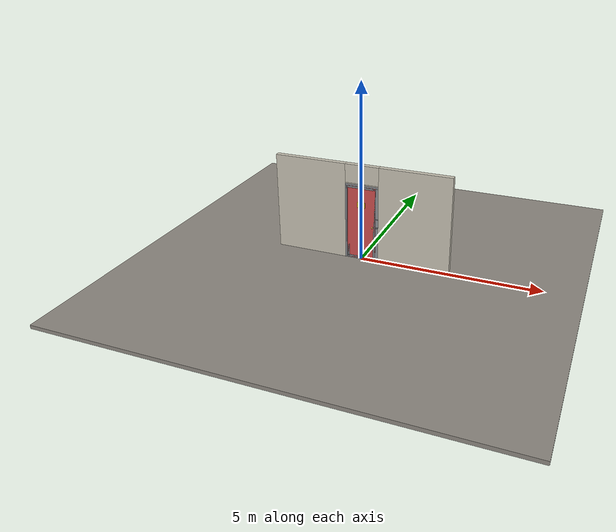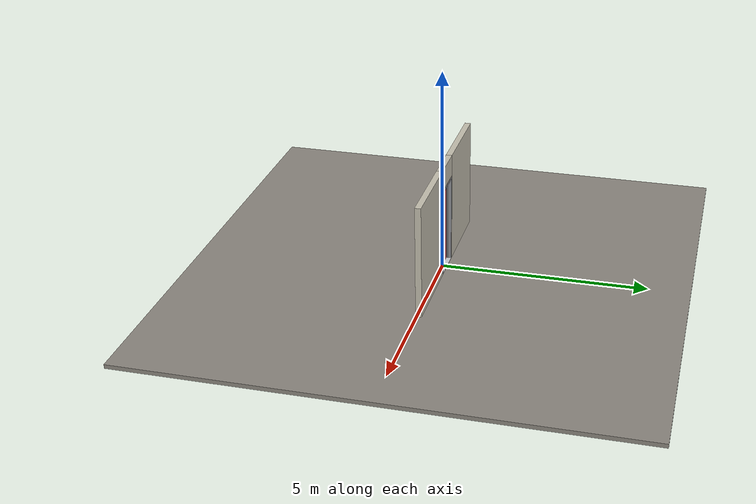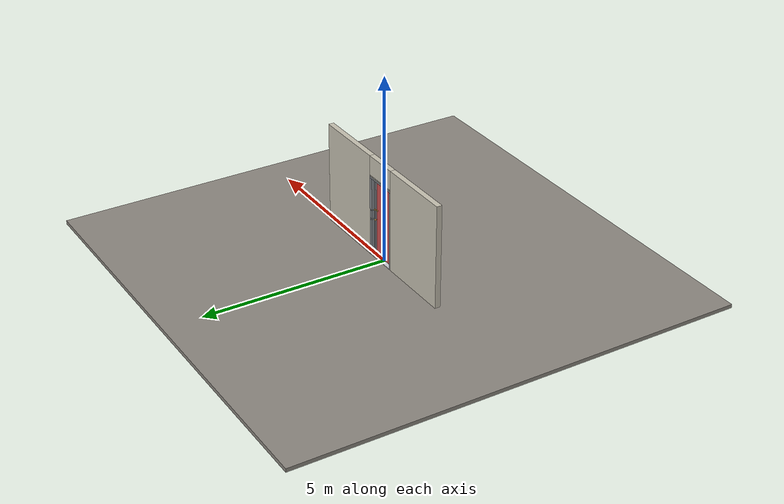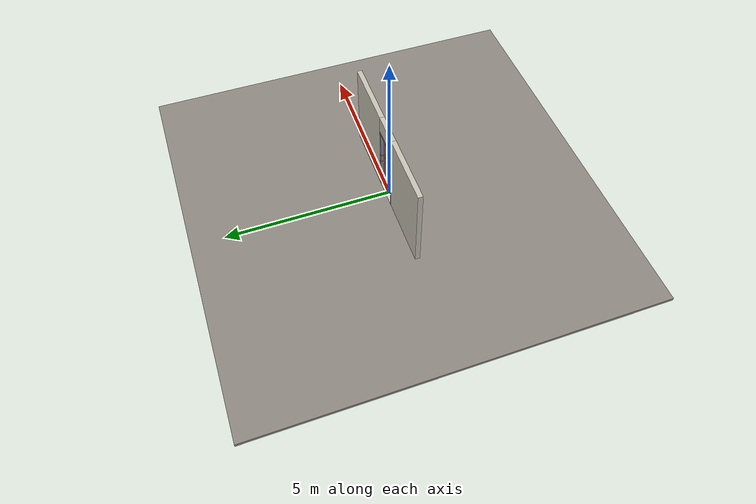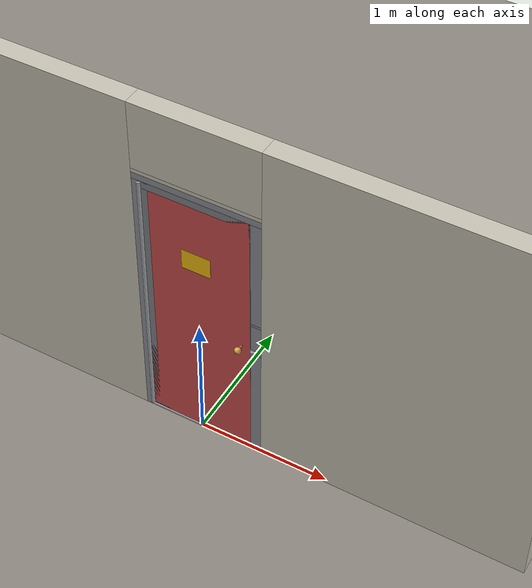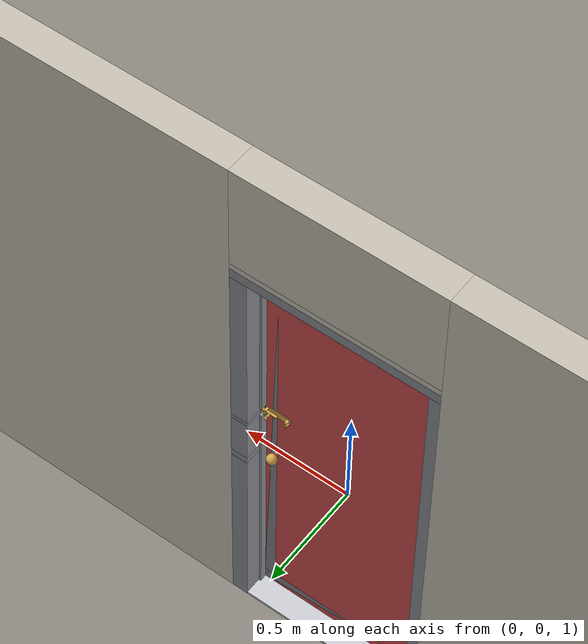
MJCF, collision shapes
<?xml version="1.0" ?>
<mujoco model="db0997_swing_single_full">
  <compiler angle="radian" meshdir="../../hardware" texturedir="../../textures" autolimits="true" inertiafromgeom="false"/>
  <option timestep="0.002" integrator="implicitfast" cone="elliptic" impratio="10" noslip_iterations="3">
    <flag multiccd="enable"/>
  </option>
  <size memory="16M"/>
  <default>
    <geom condim="4" solref="0.005 1" solimp="0.95 0.99 0.001"/>
    <joint solreflimit="0.005 1" solimplimit="0.95 0.99 0.001"/>
    <tendon solreflimit="0.005 1"/>
    <equality solref="0.002 1"/>
  </default>
  <visual>
    <headlight ambient="0.4 0.4 0.4" diffuse="0.7 0.7 0.7" specular="0.2 0.2 0.2"/>
    <quality shadowsize="4096"/>
    <map znear="0.01" zfar="60"/>
  </visual>
  <asset>
    <mesh name="knob_d1888f6f03" file="knob_d1888f6f03.obj"/>
    <material name="mat_floor" rgba="0.55 0.53 0.5 1" specular="0.2" shininess="0.15" reflectance="0"/>
    <material name="mat_wall" rgba="0.78 0.76 0.7 1" specular="0.2" shininess="0.1" reflectance="0"/>
    <material name="mat_leaf" rgba="0.5 0.51 0.53 1" specular="0.23" shininess="0.31" reflectance="0.02"/>
    <material name="mat_hinge" rgba="0.65 0.66 0.68 1" specular="0.74" shininess="0.5" reflectance="0.36"/>
    <material name="mat_op_brass" rgba="0.85 0.66 0.3 1" specular="0.8" shininess="0.75" reflectance="0.4"/>
    <material name="mat_trim" rgba="0.85 0.66 0.3 1" specular="0.8" shininess="0.75" reflectance="0.4"/>
    <material name="mat_bolt" rgba="0.85 0.66 0.3 1" specular="0.8" shininess="0.75" reflectance="0.4"/>
    <material name="mat_frame" rgba="0.55 0.56 0.58 1" specular="0.8" shininess="0.55" reflectance="0.4"/>
    <material name="mat_threshold" rgba="0.8 0.81 0.83 1" specular="0.8" shininess="0.6" reflectance="0.4"/>
    <material name="mat_placard" rgba="0.95 0.75 0.05 1" specular="0.2" shininess="0.5" reflectance="0"/>
    <texture name="skybox" type="skybox" builtin="gradient" rgb1="0.6 0.7 0.85" rgb2="0.9 0.92 0.95" width="256" height="256"/>
  </asset>
  <worldbody>
    <light name="sun" pos="1.5 -2.5 4" dir="-0.3 0.5 -0.8" directional="true" diffuse="0.8 0.8 0.8" specular="0.3 0.3 0.3" castshadow="true"/>
    <light name="fill" pos="-1.5 2.5 3" dir="0.3 -0.5 -0.7" directional="true" diffuse="0.35 0.35 0.4" castshadow="false"/>
    <camera name="robot_view" pos="0 -2.584812 1.812087" xyaxes="1 0 0 0 0.26963 0.962964" fovy="52"/>
    <camera name="far_view" pos="0 2.690812 1.812087" xyaxes="-1 0 0 0 -0.26963 0.962964" fovy="52"/>
    <camera name="iso" pos="2.004737 -2.162762 2.234138" xyaxes="0.741536 0.670913 0 -0.242917 0.268487 0.932151" fovy="46"/>
    <camera name="detail_handle" pos="0.516 -0.859 1.296" xyaxes="0.97561 0.219512 0 -0.070934 0.315262 0.94635" fovy="38"/>
    <geom name="floor" type="box" size="6 6 0.05" pos="0 0 -0.05" material="mat_floor" group="0" contype="1" conaffinity="1" friction="0.8 0.005 0.0001" density="2400"/>
    <geom name="wall_left" type="box" size="1.02 0.0725 1.3735" pos="-1.48 0.053 1.3735" material="mat_wall" group="0" contype="1" conaffinity="1" friction="0.6 0.005 0.0001" density="800"/>
    <geom name="wall_right" type="box" size="1.005 0.0725 1.3735" pos="1.495 0.053 1.3735" material="mat_wall" group="0" contype="1" conaffinity="1" friction="0.6 0.005 0.0001" density="800"/>
    <geom name="wall_header" type="box" size="0.475 0.0725 0.26" pos="0.015 0.053 2.487" material="mat_wall" group="0" contype="1" conaffinity="1" friction="0.6 0.005 0.0001" density="800"/>
    <geom name="leaf_aux_bolt_keeper_b" type="box" size="0.014 0.003 0.0005" pos="0.4095 0.0245 1.253" quat="-0.5 -0.5 0.5 0.5" material="mat_op_brass" group="1" contype="0" conaffinity="0" density="7800"/>
    <geom name="leaf_aux_bolt_keeper_l" type="box" size="0.003 0.01 0.0005" pos="0.4095 0.0355 1.266" quat="-0.5 -0.5 0.5 0.5" material="mat_op_brass" group="1" contype="0" conaffinity="0" density="7800"/>
    <geom name="leaf_aux_bolt_keeper_t" type="box" size="0.014 0.003 0.0005" pos="0.4095 0.0245 1.279" quat="-0.5 -0.5 0.5 0.5" material="mat_op_brass" group="1" contype="0" conaffinity="0" density="7800"/>
    <geom name="leaf_aux_bolt_keeper_r" type="box" size="0.003 0.01 0.0005" pos="0.4095 0.0135 1.266" quat="-0.5 -0.5 0.5 0.5" material="mat_op_brass" group="1" contype="0" conaffinity="0" density="7800"/>
    <geom name="jamb_hinge" type="box" size="0.025 0.0725 1.0735" pos="-0.435 0.053 1.0735" material="mat_frame" group="0" contype="1" conaffinity="1" friction="0.6 0.005 0.0001" density="300"/>
    <geom name="strike_1016_wall_n" type="box" size="0.04 0.058 0.0183" pos="0.45 0.0675 1.016" material="mat_frame" group="0" contype="1" conaffinity="1" friction="0.6 0.005 0.0001" density="300"/>
    <geom name="strike_1016_wall_p" type="box" size="0.04 0.008 0.0183" pos="0.45 -0.0175 1.016" material="mat_frame" group="0" contype="1" conaffinity="1" friction="0.6 0.005 0.0001" density="300"/>
    <geom name="strike_1016_ramp" type="box" size="0.04 0.018028 0.0183" pos="0.453282 -0.018312 1.016" quat="0.957092 0 0 0.289784" material="mat_frame" group="0" contype="1" conaffinity="1" friction="0.12 0.005 0.0001" density="300"/>
    <geom name="strike_1016_back" type="box" size="0.0285 0.0095 0.0183" pos="0.4615 0 1.016" material="mat_frame" group="0" contype="1" conaffinity="1" friction="0.6 0.005 0.0001" density="300"/>
    <geom name="strike_1266_wall_n" type="box" size="0.04 0.0465 0.01" pos="0.45 0.079 1.266" material="mat_frame" group="0" contype="1" conaffinity="1" friction="0.6 0.005 0.0001" density="300"/>
    <geom name="strike_1266_wall_p" type="box" size="0.04 0.018 0.01" pos="0.45 -0.0015 1.266" material="mat_frame" group="0" contype="1" conaffinity="1" friction="0.6 0.005 0.0001" density="300"/>
    <geom name="strike_1266_back" type="box" size="0.019 0.008 0.01" pos="0.471 0.0245 1.266" material="mat_frame" group="0" contype="1" conaffinity="1" friction="0.6 0.005 0.0001" density="300"/>
    <geom name="jamb_strike_0" type="box" size="0.04 0.0725 0.49885" pos="0.45 0.053 0.49885" material="mat_frame" group="0" contype="1" conaffinity="1" friction="0.6 0.005 0.0001" density="300"/>
    <geom name="jamb_strike_1" type="box" size="0.04 0.0725 0.11085" pos="0.45 0.053 1.14515" material="mat_frame" group="0" contype="1" conaffinity="1" friction="0.6 0.005 0.0001" density="300"/>
    <geom name="jamb_strike_2" type="box" size="0.04 0.0725 0.4355" pos="0.45 0.053 1.7115" material="mat_frame" group="0" contype="1" conaffinity="1" friction="0.6 0.005 0.0001" density="300"/>
    <geom name="jamb_head" type="box" size="0.475 0.0725 0.025" pos="0.015 0.053 2.172" material="mat_frame" group="0" contype="1" conaffinity="1" friction="0.6 0.005 0.0001" density="300"/>
    <geom name="head_stud" type="box" size="0.475 0.0725 0.015" pos="0.015 0.053 2.212" material="mat_wall" group="0" contype="1" conaffinity="1" friction="0.6 0.005 0.0001" density="500"/>
    <geom name="stop_hinge" type="box" size="0.0055 0.016 1.0735" pos="-0.4045 0.029 1.0735" material="mat_frame" group="0" contype="1" conaffinity="1" friction="0.6 0.005 0.0001" density="300"/>
    <geom name="stop_strike" type="box" size="0.0055 0.016 0.622" pos="0.4045 0.029 0.622" material="mat_frame" group="0" contype="1" conaffinity="1" friction="0.6 0.005 0.0001" density="300"/>
    <geom name="stop_strike_1" type="box" size="0.0055 0.016 0.4295" pos="0.4045 0.029 1.7175" material="mat_frame" group="0" contype="1" conaffinity="1" friction="0.6 0.005 0.0001" density="300"/>
    <geom name="stop_head" type="box" size="0.41 0.016 0.0055" pos="0 0.029 2.1415" material="mat_frame" group="0" contype="1" conaffinity="1" friction="0.6 0.005 0.0001" density="300"/>
    <geom name="threshold" type="box" size="0.46 0.0725 0.0065" pos="0 0.053 0.0065" material="mat_threshold" group="0" contype="1" conaffinity="1" friction="0.5 0.005 0.0001" density="2700"/>
    <site name="approach_point" pos="0 -1.5 0" quat="1 0 0 0" size="0.05" rgba="0.2 0.9 0.2 0.5" group="4"/>
    <site name="goal_point" pos="0 1.5 0" quat="1 0 0 0" size="0.05" rgba="0.2 0.9 0.2 0.5" group="4"/>
    <site name="door_plane_center" pos="0 0 1.0735" quat="1 0 0 0" size="0.02" rgba="0.2 0.9 0.2 0.5" group="4"/>
    <body name="leaf" pos="-0.41 0 0">
      <inertial pos="0.393045 -0.000798 1.080767" mass="77.544867" quat="0.498695 0.501477 -0.498519 0.501302" diaginertia="4.620354308 29.137377208 33.747471975"/>
      <joint name="leaf_hinge" type="hinge" axis="0 0 -1" pos="0.003 -0.0195 0" limited="true" range="0 2.268928" damping="0.218374" frictionloss="3.093382" armature="0.02"/>
      <geom name="leaf_slab_col" type="box" size="0.4065 0.0125 1.063" pos="0.4095 0 1.08" material="mat_leaf" group="3" contype="1" conaffinity="1" rgba="0.8 0.3 0.3 0.25" friction="0.45 0.005 0.0001" density="1"/>
      <geom name="leaf_rail_b" type="box" size="0.4065 0.0125 0.03" pos="0.4095 0 0.047" material="mat_leaf" group="1" contype="0" conaffinity="0" density="1"/>
      <geom name="leaf_rail_t" type="box" size="0.4065 0.0125 0.03" pos="0.4095 0 2.113" material="mat_leaf" group="1" contype="0" conaffinity="0" density="1"/>
      <geom name="leaf_stile_h" type="box" size="0.03 0.0125 1.063" pos="0.033 0 1.08" material="mat_leaf" group="1" contype="0" conaffinity="0" density="1"/>
      <geom name="leaf_stile_l" type="box" size="0.03 0.0125 1.063" pos="0.786 0 1.08" material="mat_leaf" group="1" contype="0" conaffinity="0" density="1"/>
      <geom name="leaf_bar_0" type="cylinder" size="0.0095 1.003" pos="0.1323 0 1.08" material="mat_leaf" group="1" contype="0" conaffinity="0" density="1"/>
      <geom name="leaf_bar_1" type="cylinder" size="0.0095 1.003" pos="0.2709 0 1.08" material="mat_leaf" group="1" contype="0" conaffinity="0" density="1"/>
      <geom name="leaf_bar_2" type="cylinder" size="0.0095 1.003" pos="0.4095 0 1.08" material="mat_leaf" group="1" contype="0" conaffinity="0" density="1"/>
      <geom name="leaf_bar_3" type="cylinder" size="0.0095 1.003" pos="0.5481 0 1.08" material="mat_leaf" group="1" contype="0" conaffinity="0" density="1"/>
      <geom name="leaf_bar_4" type="cylinder" size="0.0095 1.003" pos="0.6867 0 1.08" material="mat_leaf" group="1" contype="0" conaffinity="0" density="1"/>
      <geom name="leaf_crossbar_33" type="box" size="0.3465 0.01 0.02" pos="0.4095 0 0.71858" material="mat_leaf" group="1" contype="0" conaffinity="0" density="1"/>
      <geom name="leaf_crossbar_66" type="box" size="0.3465 0.01 0.02" pos="0.4095 0 1.42016" material="mat_leaf" group="1" contype="0" conaffinity="0" density="1"/>
      <geom name="hinge_continuous" type="cylinder" size="0.0136 1.053" pos="0.003 -0.0195 1.08" material="mat_hinge" group="1" contype="0" conaffinity="0" density="2700"/>
      <geom name="leaf_latch_bolt_faceplate" type="box" size="0.0006 0.0105 0.0283" pos="0.8154 0 1.016" material="mat_bolt" group="1" contype="0" conaffinity="0" density="8500"/>
      <geom name="leaf_aux_bolt_plate" type="box" size="0.0595 0.019 0.001" pos="0.7485 0.0135 1.266" quat="0.707107 -0.707107 0 0" material="mat_op_brass" group="1" contype="0" conaffinity="0" density="7800"/>
      <geom name="leaf_aux_bolt_guide_0_leg_n" type="box" size="0.006 0.002 0.0125" pos="0.8 0.025 1.277" quat="0.707107 -0.707107 0 0" material="mat_op_brass" group="1" contype="0" conaffinity="0" density="7800"/>
      <geom name="leaf_aux_bolt_guide_0_leg_p" type="box" size="0.006 0.002 0.0125" pos="0.8 0.025 1.255" quat="0.707107 -0.707107 0 0" material="mat_op_brass" group="1" contype="0" conaffinity="0" density="7800"/>
      <geom name="leaf_aux_bolt_guide_0_bridge" type="box" size="0.006 0.013 0.002" pos="0.8 0.0355 1.266" quat="0.707107 -0.707107 0 0" material="mat_op_brass" group="1" contype="0" conaffinity="0" density="7800"/>
      <geom name="leaf_aux_bolt_guide_1_leg_n" type="box" size="0.006 0.002 0.0125" pos="0.699 0.025 1.277" quat="0.707107 -0.707107 0 0" material="mat_op_brass" group="1" contype="0" conaffinity="0" density="7800"/>
      <geom name="leaf_aux_bolt_guide_1_leg_p" type="box" size="0.006 0.002 0.0125" pos="0.699 0.025 1.255" quat="0.707107 -0.707107 0 0" material="mat_op_brass" group="1" contype="0" conaffinity="0" density="7800"/>
      <geom name="leaf_aux_bolt_guide_1_bridge" type="box" size="0.006 0.013 0.002" pos="0.699 0.0355 1.266" quat="0.707107 -0.707107 0 0" material="mat_op_brass" group="1" contype="0" conaffinity="0" density="7800"/>
      <geom name="warning_placard" type="box" size="0.11 0.001 0.08" pos="0.4095 -0.0135 1.6115" material="mat_placard" group="2" contype="0" conaffinity="0" density="1000"/>
      <site name="leaf_edge_mid" pos="0.816 0 1.063" quat="1 0 0 0" size="0.02" rgba="0.2 0.9 0.2 0.5" group="4"/>
      <body name="leaf_handle" pos="0.746 0 1.016">
        <inertial pos="0 0 0" mass="1.135083" quat="0 0.707107 0.707107 0" diaginertia="0.00031221 0.003140271 0.003140271"/>
        <joint name="leaf_handle_hinge" type="hinge" axis="0 -1 0" limited="true" range="0 0.87" damping="0.143612" frictionloss="0.038" stiffness="0.5" springref="-0.5" armature="0.01"/>
        <geom name="leaf_handle_spindle" type="cylinder" size="0.006 0.0205" pos="0 0 0" quat="0.707107 -0.707107 0 0" material="mat_op_brass" group="1" contype="0" conaffinity="0" density="7850"/>
        <geom name="leaf_handle_knob_n" type="mesh" mesh="knob_d1888f6f03" pos="0 -0.0125 0" quat="0.707107 0.707107 0 0" material="mat_op_brass" group="1" contype="0" conaffinity="0" density="3000"/>
        <geom name="leaf_handle_knob_col_n" type="sphere" size="0.0243" pos="0 -0.059 0" material="mat_op_brass" group="0" contype="1" conaffinity="1" friction="0.9 0.01 0.0001" density="3000"/>
        <geom name="leaf_handle_knob_neck_n" type="cylinder" size="0.011 0.012" pos="0 -0.0245 0" quat="0.707107 -0.707107 0 0" material="mat_op_brass" group="3" contype="1" conaffinity="1" rgba="0.8 0.3 0.3 0.25" friction="0.6 0.005 0.0001" density="3000"/>
        <geom name="leaf_handle_knob_p" type="mesh" mesh="knob_d1888f6f03" pos="0 0.0125 0" quat="-0.707107 0.707107 0 0" material="mat_op_brass" group="1" contype="0" conaffinity="0" density="3000"/>
        <geom name="leaf_handle_knob_col_p" type="sphere" size="0.0243" pos="0 0.059 0" material="mat_op_brass" group="0" contype="1" conaffinity="1" friction="0.9 0.01 0.0001" density="3000"/>
        <geom name="leaf_handle_knob_neck_p" type="cylinder" size="0.011 0.012" pos="0 0.0245 0" quat="0.707107 -0.707107 0 0" material="mat_op_brass" group="3" contype="1" conaffinity="1" rgba="0.8 0.3 0.3 0.25" friction="0.6 0.005 0.0001" density="3000"/>
        <site name="leaf_handle_grip_n" pos="0 -0.059 0" quat="1 0 0 0" size="0.012" rgba="0.2 0.9 0.2 0.5" group="4"/>
        <site name="leaf_handle_grip_p" pos="0 0.059 0" quat="1 0 0 0" size="0.012" rgba="0.2 0.9 0.2 0.5" group="4"/>
      </body>
      <body name="leaf_latch_bolt" pos="0.816 0 1.016">
        <inertial pos="-0.0055 0 0" mass="0.074627" quat="0.92388 -0.382683 0 0" diaginertia="0.000002271 0.000013255 0.000013255"/>
        <joint name="leaf_latch_bolt_slide" type="slide" axis="-1 0 0" limited="true" range="0 0.019" damping="2" frictionloss="0.3" stiffness="600" springref="-0.01" armature="0.1"/>
        <geom name="leaf_latch_bolt_capsule" type="capsule" size="0.008 0.0165" pos="-0.0055 0 0" quat="0.707107 0 0.707107 0" material="mat_bolt" group="0" contype="1" conaffinity="1" friction="0.2 0.005 0.0001" density="8500"/>
      </body>
      <body name="leaf_aux_bolt" pos="0.816 0.0245 1.266">
        <inertial pos="-0.023563 0.00492 0" mass="0.111784" quat="0.998595 0 0 -0.05299" diaginertia="0.000012212 0.000071985 0.000082309"/>
        <joint name="leaf_aux_bolt_slide" type="slide" axis="-1 0 0" limited="true" range="0 0.001" damping="1" frictionloss="1" armature="0.1"/>
        <geom name="leaf_aux_bolt_rod" type="capsule" size="0.006 0.044" pos="-0.02 0 0" quat="0.707107 0 0.707107 0" material="mat_op_brass" group="0" contype="1" conaffinity="1" friction="0.6 0.005 0.0001" density="7850"/>
        <geom name="leaf_aux_bolt_knob" type="capsule" size="0.005 0.01" pos="-0.035 0.015 0" quat="0.707107 -0.707107 0 0" material="mat_op_brass" group="0" contype="1" conaffinity="1" friction="0.6 0.005 0.0001" density="7850"/>
        <geom name="leaf_aux_bolt_knob_end" type="sphere" size="0.00675" pos="-0.035 0.03 0" material="mat_op_brass" group="1" contype="0" conaffinity="0" density="7850"/>
        <site name="leaf_aux_bolt_grip" pos="-0.035 0.034 0" quat="1 0 0 0" size="0.012" rgba="0.2 0.9 0.2 0.5" group="4"/>
      </body>
    </body>
  </worldbody>
  <tendon>
    <fixed name="leaf_latch_bolt_coupling" limited="true" range="0 10">
      <joint joint="leaf_latch_bolt_slide" coef="1"/>
      <joint joint="leaf_handle_hinge" coef="-0.023457"/>
    </fixed>
  </tendon>
  <sensor>
    <jointpos name="leaf_hinge_pos" joint="leaf_hinge"/>
    <jointvel name="leaf_hinge_vel" joint="leaf_hinge"/>
    <jointpos name="leaf_handle_hinge_pos" joint="leaf_handle_hinge"/>
    <jointvel name="leaf_handle_hinge_vel" joint="leaf_handle_hinge"/>
    <jointpos name="leaf_latch_bolt_slide_pos" joint="leaf_latch_bolt_slide"/>
    <jointvel name="leaf_latch_bolt_slide_vel" joint="leaf_latch_bolt_slide"/>
    <jointpos name="leaf_aux_bolt_slide_pos" joint="leaf_aux_bolt_slide"/>
    <jointvel name="leaf_aux_bolt_slide_vel" joint="leaf_aux_bolt_slide"/>
  </sensor>
</mujoco>
